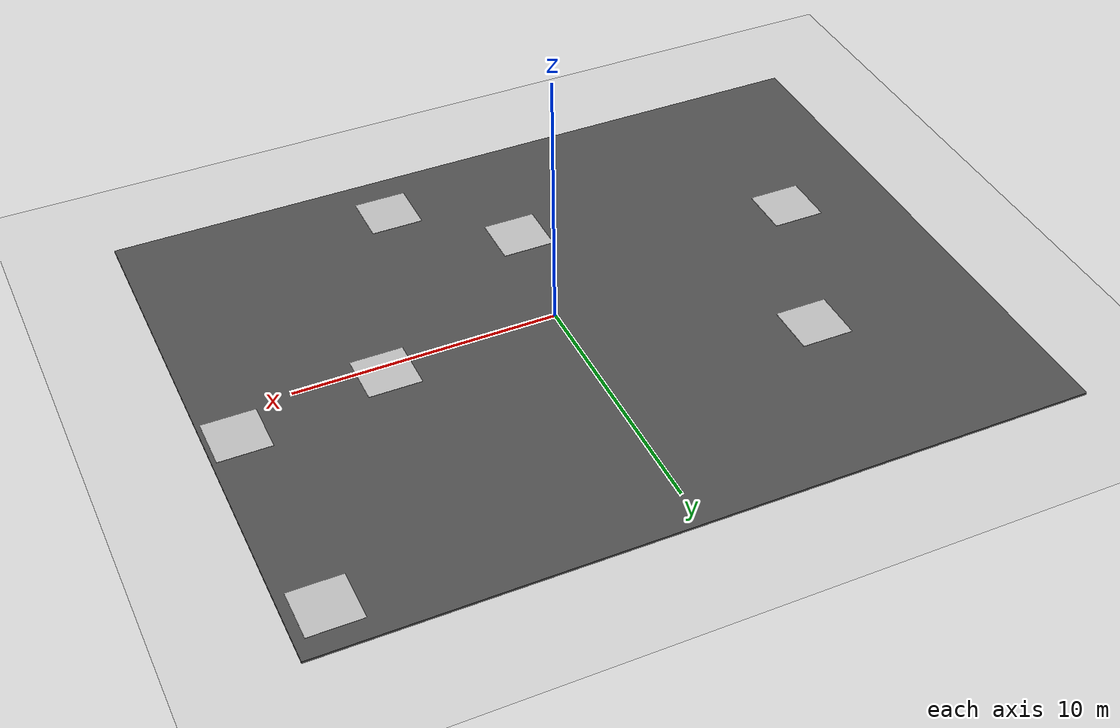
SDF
<sdf version="1.6">
 <world name="default">
  <light name="sun" type="directional">
   <pose>0 0 100 0 -0 0</pose>
   <diffuse>0.8 0.8 0.8 1</diffuse>
   <specular>0.1 0.1 0.1 1</specular>
   <attenuation>
    <range>1000</range>
    <constant>0.9</constant>
    <linear>0.01</linear>
    <quadratic>0.001</quadratic>
   </attenuation>
   <direction>-0.5 0.5 -1</direction>
  </light>
  <model name="ground_plane">
   <static>1</static>
   <link name="link">
    <collision name="collision">
     <geometry><plane><normal>0 0 1</normal><size>100 100</size></plane></geometry>
     <surface><friction><ode><mu>100</mu><mu2>50</mu2></ode></friction></surface>
    </collision>
    <visual name="visual">
     <cast_shadows>0</cast_shadows>
     <geometry><plane><normal>0 0 1</normal><size>100 100</size></plane></geometry>
     <material>
      <script><uri>file://media/materials/scripts/gazebo.material</uri><name>Gazebo/Grey</name></script>
     </material>
    </visual>
   </link>
  </model>
  <gravity>0 0 -9.8</gravity>
  <magnetic_field>6e-06 2.3e-05 -4.2e-05</magnetic_field>
  <atmosphere type="adiabatic"/>
  <physics name="default_physics" default="0" type="ode">
   <max_step_size>0.001</max_step_size>
   <real_time_factor>1</real_time_factor>
   <real_time_update_rate>1000</real_time_update_rate>
  </physics>
  <scene><ambient>0.4 0.4 0.4 1</ambient><background>0.7 0.7 0.7 1</background><shadows>1</shadows></scene>
  <spherical_coordinates>
   <surface_model>EARTH_WGS84</surface_model>
   <latitude_deg>0</latitude_deg>
   <longitude_deg>0</longitude_deg>
   <elevation>0</elevation>
   <heading_deg>0</heading_deg>
  </spherical_coordinates>
  <model name="asphalt_plane">
   <static>1</static>
   <link name="link">
    <collision name="collision">
     <geometry><box><size>28.54 22.04 0.1</size></box></geometry>
     <surface><friction><ode><mu>100</mu><mu2>50</mu2></ode></friction></surface>
    </collision>
    <visual name="visual">
     <cast_shadows>0</cast_shadows>
     <geometry><box><size>28.54 22.04 0.1</size></box></geometry>
     <material>
      <script>
       <uri>model://asphalt_plane/materials/scripts</uri>
       <uri>model://asphalt_plane/materials/textures</uri>
       <name>vrc/asphalt</name>
      </script>
     </material>
    </visual>
   </link>
   <pose>-0.719505 0.551979 0 0 -0 0</pose>
  </model>
  <model name="sandy_patch">
   <static>1</static>
   <link name="link">
    <collision name="collision">
     <geometry><box><size>2 2 0.1</size></box></geometry>
     <surface><friction><ode><mu>1000</mu><mu2>500</mu2></ode></friction></surface>
    </collision>
    <visual name="visual">
     <cast_shadows>0</cast_shadows>
     <geometry><box><size>2 2 0.1</size></box></geometry>
     <material>
      <script>
       <uri>model://sandy_patch/materials/scripts</uri>
       <uri>model://sandy_patch/materials/textures</uri>
       <name>vrc/sand</name>
      </script>
     </material>
    </visual>
   </link>
   <pose>-0.719505 -4.95802 0.01 0 -0 0</pose>
  </model>
  <audio><device>default</device></audio>
  <model name="sandy_patch_clone">
   <static>1</static>
   <link name="link">
    <collision name="collision">
     <geometry><box><size>2 2 0.1</size></box></geometry>
     <surface><friction><ode><mu>1000</mu><mu2>500</mu2></ode></friction></surface>
    </collision>
    <visual name="visual">
     <cast_shadows>0</cast_shadows>
     <geometry><box><size>2 2 0.1</size></box></geometry>
     <material>
      <script>
       <uri>model://sandy_patch/materials/scripts</uri>
       <uri>model://sandy_patch/materials/textures</uri>
       <name>vrc/sand</name>
      </script>
     </material>
    </visual>
   </link>
   <pose>3.31168 -8.35711 0.01 0 -0 0</pose>
  </model>
  <model name="sandy_patch_clone_0">
   <static>1</static>
   <link name="link">
    <collision name="collision">
     <geometry><box><size>2 2 0.1</size></box></geometry>
     <surface><friction><ode><mu>1000</mu><mu2>500</mu2></ode></friction></surface>
    </collision>
    <visual name="visual">
     <cast_shadows>0</cast_shadows>
     <geometry><box><size>2 2 0.1</size></box></geometry>
     <material>
      <script>
       <uri>model://sandy_patch/materials/scripts</uri>
       <uri>model://sandy_patch/materials/textures</uri>
       <name>vrc/sand</name>
      </script>
     </material>
    </visual>
   </link>
   <pose>-8.32693 4.31646 0.01 0 -0 0</pose>
  </model>
  <model name="sandy_patch_clone_1">
   <static>1</static>
   <link name="link">
    <collision name="collision">
     <geometry><box><size>2 2 0.1</size></box></geometry>
     <surface><friction><ode><mu>1000</mu><mu2>500</mu2></ode></friction></surface>
    </collision>
    <visual name="visual">
     <cast_shadows>0</cast_shadows>
     <geometry><box><size>2 2 0.1</size></box></geometry>
     <material>
      <script>
       <uri>model://sandy_patch/materials/scripts</uri>
       <uri>model://sandy_patch/materials/textures</uri>
       <name>vrc/sand</name>
      </script>
     </material>
    </visual>
   </link>
   <pose>-10.9282 -2.30084 0.01 0 -0 0</pose>
  </model>
  <model name="sandy_patch_clone_2">
   <static>1</static>
   <link name="link">
    <collision name="collision">
     <geometry><box><size>2 2 0.1</size></box></geometry>
     <surface><friction><ode><mu>1000</mu><mu2>500</mu2></ode></friction></surface>
    </collision>
    <visual name="visual">
     <cast_shadows>0</cast_shadows>
     <geometry><box><size>2 2 0.1</size></box></geometry>
     <material>
      <script>
       <uri>model://sandy_patch/materials/scripts</uri>
       <uri>model://sandy_patch/materials/textures</uri>
       <name>vrc/sand</name>
      </script>
     </material>
    </visual>
   </link>
   <pose>12.3827 1.26356 0.01 0 -0 0</pose>
  </model>
  <model name="sandy_patch_clone_3">
   <static>1</static>
   <link name="link">
    <collision name="collision">
     <geometry><box><size>2 2 0.1</size></box></geometry>
     <surface><friction><ode><mu>1000</mu><mu2>500</mu2></ode></friction></surface>
    </collision>
    <visual name="visual">
     <cast_shadows>0</cast_shadows>
     <geometry><box><size>2 2 0.1</size></box></geometry>
     <material>
      <script>
       <uri>model://sandy_patch/materials/scripts</uri>
       <uri>model://sandy_patch/materials/textures</uri>
       <name>vrc/sand</name>
      </script>
     </material>
    </visual>
   </link>
   <pose>12.1672 9.74594 0.01 0 -0 0</pose>
  </model>
  <model name="sandy_patch_clone_4">
   <static>1</static>
   <link name="link">
    <collision name="collision">
     <geometry><box><size>2 2 0.1</size></box></geometry>
     <surface><friction><ode><mu>1000</mu><mu2>500</mu2></ode></friction></surface>
    </collision>
    <visual name="visual">
     <cast_shadows>0</cast_shadows>
     <geometry><box><size>2 2 0.1</size></box></geometry>
     <material>
      <script>
       <uri>model://sandy_patch/materials/scripts</uri>
       <uri>model://sandy_patch/materials/textures</uri>
       <name>vrc/sand</name>
      </script>
     </material>
    </visual>
   </link>
   <pose>6.66609 0.346023 0.01 0 -0 0</pose>
  </model>
 </world>
</sdf>
